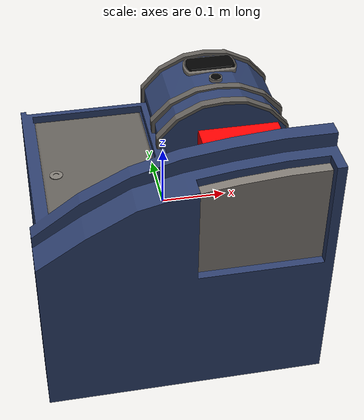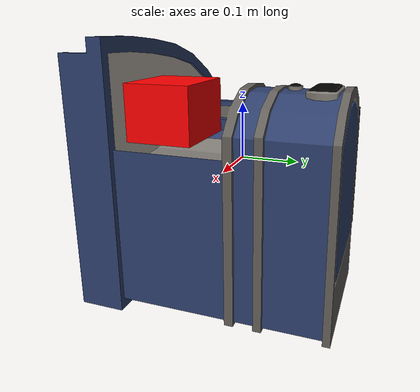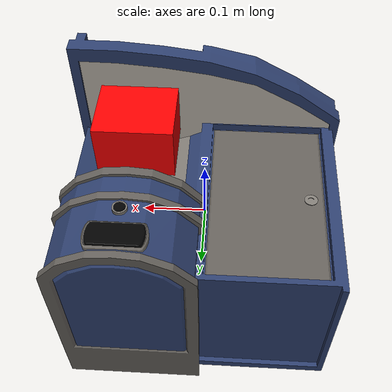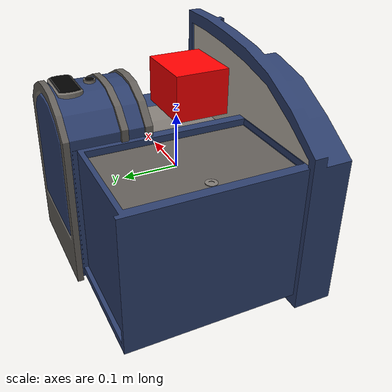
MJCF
<mujoco model="coffee_machine_26">
  <compiler autolimits="true" boundmass="0.01" angle="radian"/>
  <default>
    <default class="/">
      <default class="__VISUAL_MJT__">
        <geom contype="0" conaffinity="0" group="0"/>
      </default>
      <default class="__STRUCTURAL_MJT__">
        <geom contype="8" conaffinity="15" group="4" friction="0.90000000000000002 0.90000000000000002 0.001" solref="0.025000000000000001 1" solimp="0.998 0.998 0.001"/>
      </default>
      <default class="__DYNAMIC_MJT__">
        <geom contype="1" conaffinity="15" group="4" friction="0.90000000000000002 0.90000000000000002 0.001" solref="0.025000000000000001 1" solimp="0.998 0.998 0.001"/>
      </default>
    </default>
  </default>
  <asset>
    <material name="material_coffee_machine_backup_mat" class="/" specular="0.5" shininess="0.5" rgba="0.5 0.5 0.5 1"/>
    <material name="material_Coffee_Machine_Readout_Mat_Off" class="/" specular="0.5" shininess="0.5" rgba="0 0 0 1"/>
    <texture name="Coffee_Machine_Decal_Mat" type="2d" file="Coffee_Machine_Decal_AlbedoTransparency.png"/>
    <material name="material_Coffee_Machine_Decal_Mat" class="/" texture="Coffee_Machine_Decal_Mat" specular="0.5" shininess="0.5" rgba="1 1 1 1"/>
    <texture name="Coffee_Machine_Metal_Mat" type="2d" file="MetalBumpy_AlbedoTransparency.png"/>
    <material name="material_Coffee_Machine_Metal_Mat" class="/" texture="Coffee_Machine_Metal_Mat" specular="0.5" shininess="0.5" rgba="0.66176469999999998 0.66176469999999998 0.66176469999999998 1"/>
    <texture name="Coffee_Machine_Secondary1_Color_Mat" type="2d" file="BrushedIron_AlbedoTransparency.png"/>
    <material name="material_Coffee_Machine_Secondary1_Color_Mat" class="/" texture="Coffee_Machine_Secondary1_Color_Mat" specular="0.5" shininess="0.5" rgba="0.51470590000000005 0.51470590000000005 0.51470590000000005 1"/>
    <texture name="Coffee_Machine_Primary1_Color_Mat" type="2d" file="BumpyPlastic_Albedo.png"/>
    <material name="material_Coffee_Machine_Primary1_Color_Mat" class="/" texture="Coffee_Machine_Primary1_Color_Mat" specular="0.5" shininess="0.5" rgba="0.234375 0.34090910000000002 0.625 1"/>
    <mesh name="coffee_machine_26_coffee_machine_26_0" class="/" file="coffee_machine_26_coffee_machine_26/coffee_machine_26_coffee_machine_26_0.obj" scale="1 1 1"/>
    <mesh name="coffee_machine_26_coffee_machine_26_1" class="/" file="coffee_machine_26_coffee_machine_26/coffee_machine_26_coffee_machine_26_1.obj" scale="1 1 1"/>
    <mesh name="coffee_machine_26_coffee_machine_26_2" class="/" file="coffee_machine_26_coffee_machine_26/coffee_machine_26_coffee_machine_26_2.obj" scale="1 1 1"/>
    <mesh name="coffee_machine_26_coffee_machine_26_3" class="/" file="coffee_machine_26_coffee_machine_26/coffee_machine_26_coffee_machine_26_3.obj" scale="1 1 1"/>
    <mesh name="coffee_machine_26_coffee_machine_26_4" class="/" file="coffee_machine_26_coffee_machine_26/coffee_machine_26_coffee_machine_26_4.obj" scale="1 1 1"/>
    <mesh name="coffee_machine_26_coffee_machine_26_5" class="/" file="coffee_machine_26_coffee_machine_26/coffee_machine_26_coffee_machine_26_5.obj" scale="1 1 1"/>
  </asset>
  <worldbody>
    <body name="coffee_machine_26">
      <joint name="coffee_machine_26_free" class="/" type="free" pos="0 0 0" axis="0 0 1" stiffness="0" range="0 0" armature="0" damping="0.10000000000000001" frictionloss="0"/>
      <body name="coffee_machine_26_coffee_machine_26" pos="-0.00044000000000000002 -0.20529 -0.066659999999999997" quat="1 0 0 0">
        <geom name="coffee_machine_26_coffee_machine_26_0" class="__VISUAL_MJT__" type="mesh" material="material_coffee_machine_backup_mat" shellinertia="true" mesh="coffee_machine_26_coffee_machine_26_0"/>
        <geom name="coffee_machine_26_coffee_machine_26_1" class="__VISUAL_MJT__" type="mesh" material="material_Coffee_Machine_Readout_Mat_Off" shellinertia="false" mesh="coffee_machine_26_coffee_machine_26_1"/>
        <geom name="coffee_machine_26_coffee_machine_26_2" class="__VISUAL_MJT__" type="mesh" material="material_Coffee_Machine_Decal_Mat" shellinertia="true" mesh="coffee_machine_26_coffee_machine_26_2"/>
        <geom name="coffee_machine_26_coffee_machine_26_3" class="__VISUAL_MJT__" type="mesh" material="material_Coffee_Machine_Metal_Mat" shellinertia="false" mesh="coffee_machine_26_coffee_machine_26_3"/>
        <geom name="coffee_machine_26_coffee_machine_26_4" class="__VISUAL_MJT__" type="mesh" material="material_Coffee_Machine_Secondary1_Color_Mat" shellinertia="false" mesh="coffee_machine_26_coffee_machine_26_4"/>
        <geom name="coffee_machine_26_coffee_machine_26_5" class="__VISUAL_MJT__" type="mesh" material="material_Coffee_Machine_Primary1_Color_Mat" shellinertia="false" mesh="coffee_machine_26_coffee_machine_26_5"/>
        <site name="coffee_machine_26_Receptacle_0" class="/" type="box" rgba="1 0 0 1" size="0.062072925269603729 0.053027182817459106 0.045179352164268494" pos="0.11180000007152557 0.12922719120979309 0.16969999670982361" quat="1 0 0 0"/>
        <geom name="coffee_machine_26_PrimitiveCollider_0" class="__DYNAMIC_MJT__" type="box" size="0.11500787734985352 0.20528808236122131 0.14551092684268951" rgba="0 1 0 1" pos="-0.10076761245727539 0.20528808236122131 -0.0050437599420547485" quat="1 0 0 0"/>
        <geom name="coffee_machine_26_PrimitiveCollider_1" class="__DYNAMIC_MJT__" type="box" size="0.12358896434307098 0.038071602582931519 0.09599737823009491" rgba="0 1 0 1" pos="-0.070969179272651672 0.038071602582931519 0.13748577237129211" quat="0.97774845361709595 0 0.20978075265884399 0"/>
        <geom name="coffee_machine_26_PrimitiveCollider_2" class="__DYNAMIC_MJT__" type="box" size="0.12221002578735352 0.20528808236122131 0.12985372543334961" rgba="0 1 0 1" pos="0.099955081939697266 0.20528808236122131 -0.015064239501953125" quat="1 0 0 0"/>
        <geom name="coffee_machine_26_PrimitiveCollider_3" class="__DYNAMIC_MJT__" type="box" size="0.10905814170837402 0.080658614635467529 0.17588543891906738" rgba="0 1 0 1" pos="0.11310696601867676 0.3299175500869751 0.040987730026245117" quat="1 0 0 0"/>
        <geom name="coffee_machine_26_PrimitiveCollider_4" class="__DYNAMIC_MJT__" type="box" size="0.10905814170837402 0.03713226318359375 0.20939135551452637" rgba="0 1 0 1" pos="0.11310696601867676 0.039010941982269287 0.074493646621704102" quat="1 0 0 0"/>
      </body>
    </body>
  </worldbody>
</mujoco>
